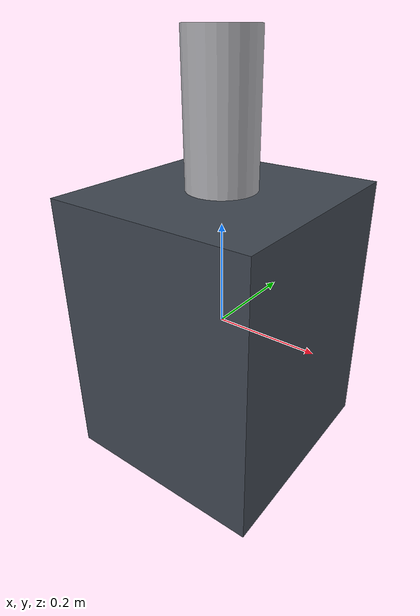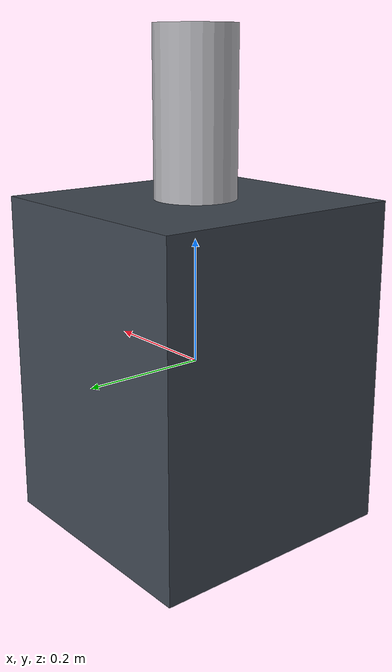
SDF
<?xml version="1.0" ?>
<sdf version="1.8">
  <model name="robot_pedestal">
    <static>true</static>

    <!-- Cupboard box, centred at the model origin. -->
    <link name="cupboard">
      <visual name="visual">
        <geometry>
          <box><size>0.40 0.42 0.53</size></box>
        </geometry>
        <material>
          <ambient>0.25 0.28 0.32 1</ambient>
          <diffuse>0.25 0.28 0.32 1</diffuse>
          <specular>0.1 0.1 0.1 1</specular>
        </material>
      </visual>
      <collision name="collision">
        <geometry>
          <box><size>0.40 0.42 0.53</size></box>
        </geometry>
      </collision>
      <inertial>
        <!-- ignored while static=true; kept for correctness if made dynamic -->
        <mass>40.0</mass>
        <inertia>
          <ixx>1.5243</ixx><ixy>0</ixy><ixz>0</ixz>
          <iyy>1.4697</iyy><iyz>0</iyz>
          <izz>1.1213</izz>
        </inertia>
      </inertial>
    </link>

    <!-- Cylindrical riser, sitting on the cupboard top.
         Cupboard top is at +0.265 from the model origin; the riser centre is
         another half-height (0.13) above that => z = 0.395. -->
    <link name="riser">
      <pose>0 0 0.395 0 0 0</pose>
      <visual name="visual">
        <geometry>
          <cylinder><radius>0.065</radius><length>0.26</length></cylinder>
        </geometry>
        <material>
          <ambient>0.6 0.6 0.62 1</ambient>
          <diffuse>0.7 0.7 0.72 1</diffuse>
          <specular>0.3 0.3 0.3 1</specular>
        </material>
      </visual>
      <collision name="collision">
        <geometry>
          <cylinder><radius>0.065</radius><length>0.26</length></cylinder>
        </geometry>
      </collision>
      <inertial>
        <mass>5.0</mass>
        <inertia>
          <ixx>0.0334</ixx><ixy>0</ixy><ixz>0</ixz>
          <iyy>0.0334</iyy><iyz>0</iyz>
          <izz>0.0106</izz>
        </inertia>
      </inertial>
    </link>
  </model>
</sdf>
